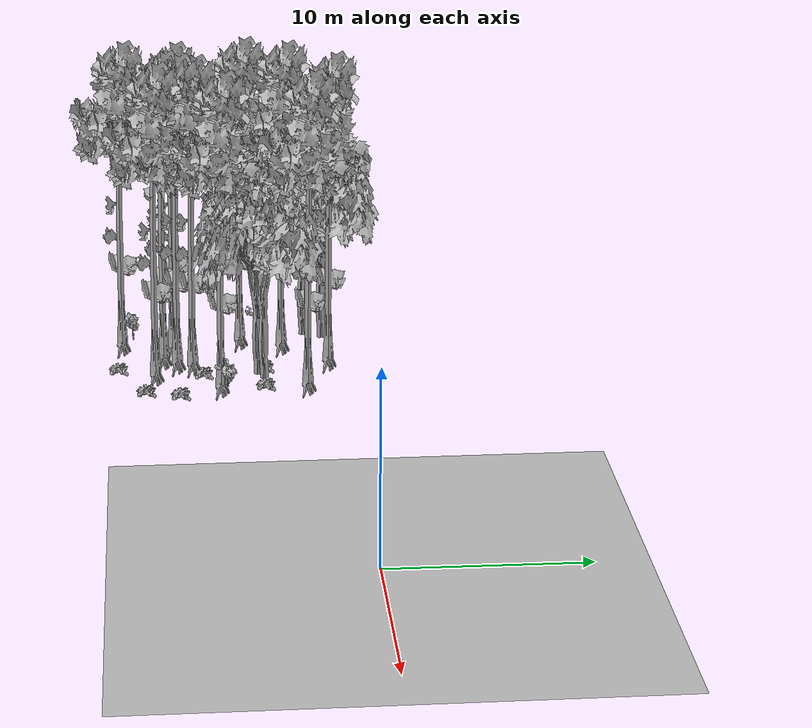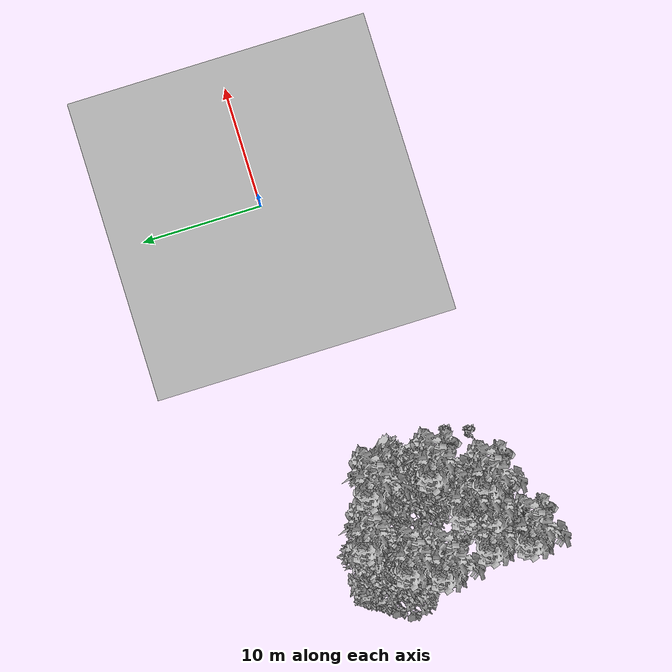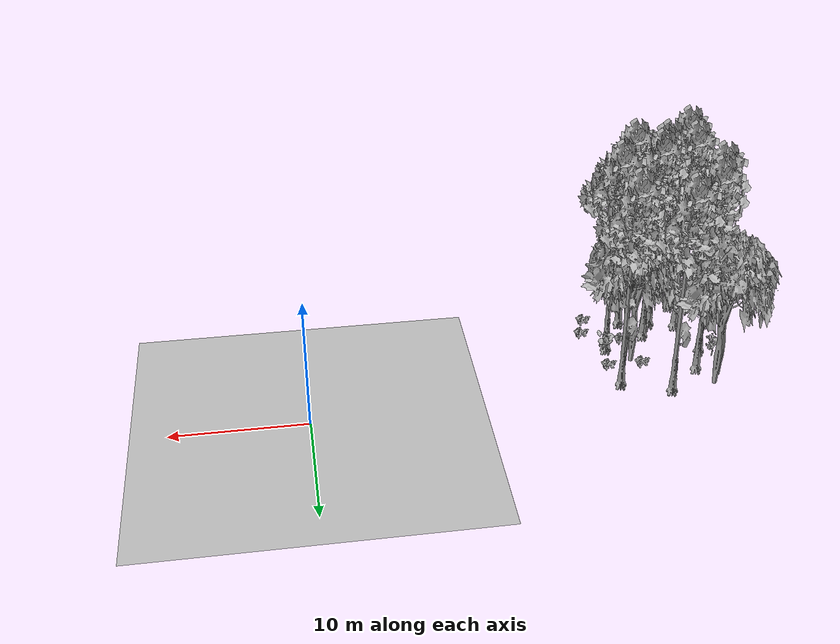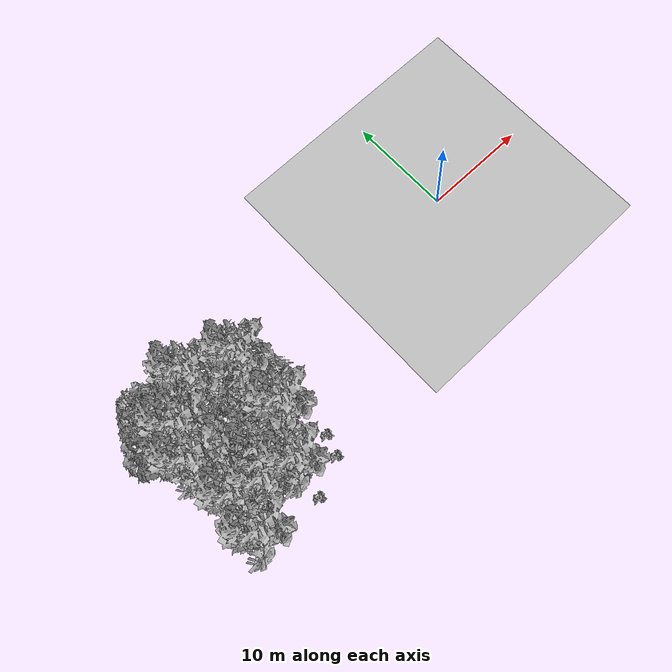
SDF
<sdf version="1.7">
 <world name="default">
  <model name="ground_plane">
   <static>1</static>
   <link name="link">
    <collision name="collision">
     <pose>-50 0 0 0 -0 0</pose>
     <geometry><plane><normal>0 0 1</normal><size>80 80</size></plane></geometry>
     <surface><contact><ode><min_depth>0.01</min_depth><max_vel>0</max_vel></ode></contact></surface>
    </collision>
    <visual name="grass">
     <cast_shadows>0</cast_shadows>
     <geometry>
      <mesh>
       <scale>0.46714285714285714 0.46714285714285714 0.1</scale>
       <uri>file://grass_plane/meshes/grass_plane.dae</uri>
      </mesh>
     </geometry>
    </visual>
   </link>
  </model>
  <model name="Tree 140">
   <static>1</static>
   <pose>-24.074778567931837 -4.224179848052529 0 1.57079 -0 0</pose>
   <link name="link">
    <collision name="collision">
     <geometry><mesh><scale>3.5 5 3.5</scale><uri>model://tree_2/meshes/tree_2.obj</uri></mesh></geometry>
    </collision>
    <visual name="visual">
     <geometry><mesh><scale>3.5 5 3.5</scale><uri>model://tree_2/meshes/tree_2.obj</uri></mesh></geometry>
    </visual>
   </link>
  </model>
  <model name="Tree 196">
   <static>1</static>
   <pose>-23.22025420814134 -6.5997689031866145 0 1.57079 -0 0</pose>
   <link name="link">
    <collision name="collision">
     <geometry><mesh><scale>3.5 5 3.5</scale><uri>model://tree_9/meshes/tree_9.obj</uri></mesh></geometry>
    </collision>
    <visual name="visual">
     <geometry><mesh><scale>3.5 5 3.5</scale><uri>model://tree_9/meshes/tree_9.obj</uri></mesh></geometry>
    </visual>
   </link>
  </model>
  <model name="Tree 198">
   <static>1</static>
   <pose>-29.34100350981269 -2.999693591344858 0 1.57079 -0 0</pose>
   <link name="link">
    <collision name="collision">
     <geometry><mesh><scale>3.5 5 3.5</scale><uri>model://tree_9/meshes/tree_9.obj</uri></mesh></geometry>
    </collision>
    <visual name="visual">
     <geometry><mesh><scale>3.5 5 3.5</scale><uri>model://tree_9/meshes/tree_9.obj</uri></mesh></geometry>
    </visual>
   </link>
  </model>
  <model name="Tree 236">
   <static>1</static>
   <pose>-26.876854646677682 -8.933180586159672 0 1.57079 -0 0</pose>
   <link name="link">
    <collision name="collision">
     <geometry><mesh><scale>3.5 5 3.5</scale><uri>model://tree_9/meshes/tree_9.obj</uri></mesh></geometry>
    </collision>
    <visual name="visual">
     <geometry><mesh><scale>3.5 5 3.5</scale><uri>model://tree_9/meshes/tree_9.obj</uri></mesh></geometry>
    </visual>
   </link>
  </model>
  <model name="Tree 317">
   <static>1</static>
   <pose>-29.89655371857726 -12.00275951224615 0 1.57079 -0 0</pose>
   <link name="link">
    <collision name="collision">
     <geometry><mesh><scale>3.5 5 3.5</scale><uri>model://tree_9/meshes/tree_9.obj</uri></mesh></geometry>
    </collision>
    <visual name="visual">
     <geometry><mesh><scale>3.5 5 3.5</scale><uri>model://tree_9/meshes/tree_9.obj</uri></mesh></geometry>
    </visual>
   </link>
  </model>
  <model name="Tree 354">
   <static>1</static>
   <pose>-30.08044130854668 -0.6957026290686841 0 1.57079 -0 0</pose>
   <link name="link">
    <collision name="collision">
     <geometry><mesh><scale>3.5 5 3.5</scale><uri>model://tree_2/meshes/tree_2.obj</uri></mesh></geometry>
    </collision>
    <visual name="visual">
     <geometry><mesh><scale>3.5 5 3.5</scale><uri>model://tree_2/meshes/tree_2.obj</uri></mesh></geometry>
    </visual>
   </link>
  </model>
  <model name="Tree 383">
   <static>1</static>
   <pose>-29.51314923952853 -9.132823719960797 0 1.57079 -0 0</pose>
   <link name="link">
    <collision name="collision">
     <geometry><mesh><scale>3.5 5 3.5</scale><uri>model://tree_9/meshes/tree_9.obj</uri></mesh></geometry>
    </collision>
    <visual name="visual">
     <geometry><mesh><scale>3.5 5 3.5</scale><uri>model://tree_9/meshes/tree_9.obj</uri></mesh></geometry>
    </visual>
   </link>
  </model>
  <model name="Tree 403">
   <static>1</static>
   <pose>-25.18936117669407 -10.149986230448818 0 1.57079 -0 0</pose>
   <link name="link">
    <collision name="collision">
     <geometry><mesh><scale>3.5 5 3.5</scale><uri>model://tree_9/meshes/tree_9.obj</uri></mesh></geometry>
    </collision>
    <visual name="visual">
     <geometry><mesh><scale>3.5 5 3.5</scale><uri>model://tree_9/meshes/tree_9.obj</uri></mesh></geometry>
    </visual>
   </link>
  </model>
  <model name="Tree 421">
   <static>1</static>
   <pose>-24.72395292384666 -4.53409005766094 0 1.57079 -0 0</pose>
   <link name="link">
    <collision name="collision">
     <geometry><mesh><scale>3.5 5 3.5</scale><uri>model://tree_2/meshes/tree_2.obj</uri></mesh></geometry>
    </collision>
    <visual name="visual">
     <geometry><mesh><scale>3.5 5 3.5</scale><uri>model://tree_2/meshes/tree_2.obj</uri></mesh></geometry>
    </visual>
   </link>
  </model>
  <model name="Tree 429">
   <static>1</static>
   <pose>-27.56545328149724 -9.685262740457937 0 1.57079 -0 0</pose>
   <link name="link">
    <collision name="collision">
     <geometry><mesh><scale>3.5 5 3.5</scale><uri>model://tree_9/meshes/tree_9.obj</uri></mesh></geometry>
    </collision>
    <visual name="visual">
     <geometry><mesh><scale>3.5 5 3.5</scale><uri>model://tree_9/meshes/tree_9.obj</uri></mesh></geometry>
    </visual>
   </link>
  </model>
  <model name="Tree 470">
   <static>1</static>
   <pose>-30.64999932081941 -1.7196036578301914 0 1.57079 -0 0</pose>
   <link name="link">
    <collision name="collision">
     <geometry><mesh><scale>3.5 5 3.5</scale><uri>model://tree_2/meshes/tree_2.obj</uri></mesh></geometry>
    </collision>
    <visual name="visual">
     <geometry><mesh><scale>3.5 5 3.5</scale><uri>model://tree_2/meshes/tree_2.obj</uri></mesh></geometry>
    </visual>
   </link>
  </model>
  <model name="Tree 564">
   <static>1</static>
   <pose>-30.317760513174616 -5.3227821002134945 0 1.57079 -0 0</pose>
   <link name="link">
    <collision name="collision">
     <geometry><mesh><scale>3.5 5 3.5</scale><uri>model://tree_9/meshes/tree_9.obj</uri></mesh></geometry>
    </collision>
    <visual name="visual">
     <geometry><mesh><scale>3.5 5 3.5</scale><uri>model://tree_9/meshes/tree_9.obj</uri></mesh></geometry>
    </visual>
   </link>
  </model>
  <model name="Tree 614">
   <static>1</static>
   <pose>-26.5884598002941 -8.08014147848506 0 1.57079 -0 0</pose>
   <link name="link">
    <collision name="collision">
     <geometry><mesh><scale>3.5 5 3.5</scale><uri>model://tree_9/meshes/tree_9.obj</uri></mesh></geometry>
    </collision>
    <visual name="visual">
     <geometry><mesh><scale>3.5 5 3.5</scale><uri>model://tree_9/meshes/tree_9.obj</uri></mesh></geometry>
    </visual>
   </link>
  </model>
  <model name="Tree 632">
   <static>1</static>
   <pose>-26.707693243315894 -0.5054184590076076 0 1.57079 -0 0</pose>
   <link name="link">
    <collision name="collision">
     <geometry><mesh><scale>3.5 5 3.5</scale><uri>model://tree_9/meshes/tree_9.obj</uri></mesh></geometry>
    </collision>
    <visual name="visual">
     <geometry><mesh><scale>3.5 5 3.5</scale><uri>model://tree_9/meshes/tree_9.obj</uri></mesh></geometry>
    </visual>
   </link>
  </model>
  <model name="Tree 635">
   <static>1</static>
   <pose>-23.165510806404647 -1.8602541495269875 0 1.57079 -0 0</pose>
   <link name="link">
    <collision name="collision">
     <geometry><mesh><scale>3.5 5 3.5</scale><uri>model://tree_9/meshes/tree_9.obj</uri></mesh></geometry>
    </collision>
    <visual name="visual">
     <geometry><mesh><scale>3.5 5 3.5</scale><uri>model://tree_9/meshes/tree_9.obj</uri></mesh></geometry>
    </visual>
   </link>
  </model>
  <model name="Bush 70">
   <static>1</static>
   <pose>-30.365210611213097 -11.388227127947658 0 1.57079 -0 0</pose>
   <link name="link">
    <collision name="collision">
     <geometry><mesh><scale>2 2 2</scale><uri>model://bush_5/meshes/bush_5.obj</uri></mesh></geometry>
     <surface><contact><collide_without_contact>false</collide_without_contact></contact></surface>
    </collision>
    <visual name="visual">
     <geometry><mesh><scale>2 2 2</scale><uri>model://bush_5/meshes/bush_5.obj</uri></mesh></geometry>
    </visual>
   </link>
  </model>
  <model name="Bush 141">
   <static>1</static>
   <pose>-21.797375855105916 -8.82443574121534 0 1.57079 -0 0</pose>
   <link name="link">
    <collision name="collision">
     <geometry><mesh><scale>2 2 2</scale><uri>model://bush_2/meshes/bush_2.obj</uri></mesh></geometry>
     <surface><contact><collide_without_contact>false</collide_without_contact></contact></surface>
    </collision>
    <visual name="visual">
     <geometry><mesh><scale>2 2 2</scale><uri>model://bush_2/meshes/bush_2.obj</uri></mesh></geometry>
    </visual>
   </link>
  </model>
  <model name="Bush 171">
   <static>1</static>
   <pose>-24.701776467887292 -7.5174883593307555 0 1.57079 -0 0</pose>
   <link name="link">
    <collision name="collision">
     <geometry><mesh><scale>2 2 2</scale><uri>model://bush_2/meshes/bush_2.obj</uri></mesh></geometry>
     <surface><contact><collide_without_contact>false</collide_without_contact></contact></surface>
    </collision>
    <visual name="visual">
     <geometry><mesh><scale>2 2 2</scale><uri>model://bush_2/meshes/bush_2.obj</uri></mesh></geometry>
    </visual>
   </link>
  </model>
  <model name="Bush 206">
   <static>1</static>
   <pose>-22.90771953564603 -6.223824906668838 0 1.57079 -0 0</pose>
   <link name="link">
    <collision name="collision">
     <geometry><mesh><scale>2 2 2</scale><uri>model://bush_0/meshes/bush_0.obj</uri></mesh></geometry>
     <surface><contact><collide_without_contact>false</collide_without_contact></contact></surface>
    </collision>
    <visual name="visual">
     <geometry><mesh><scale>2 2 2</scale><uri>model://bush_0/meshes/bush_0.obj</uri></mesh></geometry>
    </visual>
   </link>
  </model>
  <model name="Bush 405">
   <static>1</static>
   <pose>-22.825718282927994 -4.177903190632108 0 1.57079 -0 0</pose>
   <link name="link">
    <collision name="collision">
     <geometry><mesh><scale>2 2 2</scale><uri>model://bush_2/meshes/bush_2.obj</uri></mesh></geometry>
     <surface><contact><collide_without_contact>false</collide_without_contact></contact></surface>
    </collision>
    <visual name="visual">
     <geometry><mesh><scale>2 2 2</scale><uri>model://bush_2/meshes/bush_2.obj</uri></mesh></geometry>
    </visual>
   </link>
  </model>
  <model name="Bush 473">
   <static>1</static>
   <pose>-30.938110294900454 -4.154376277987822 0 1.57079 -0 0</pose>
   <link name="link">
    <collision name="collision">
     <geometry><mesh><scale>2 2 2</scale><uri>model://bush_5/meshes/bush_5.obj</uri></mesh></geometry>
     <surface><contact><collide_without_contact>false</collide_without_contact></contact></surface>
    </collision>
    <visual name="visual">
     <geometry><mesh><scale>2 2 2</scale><uri>model://bush_5/meshes/bush_5.obj</uri></mesh></geometry>
    </visual>
   </link>
  </model>
  <model name="Bush 485">
   <static>1</static>
   <pose>-25.66374585045108 -12.194671491301044 0 1.57079 -0 0</pose>
   <link name="link">
    <collision name="collision">
     <geometry><mesh><scale>2 2 2</scale><uri>model://bush_2/meshes/bush_2.obj</uri></mesh></geometry>
     <surface><contact><collide_without_contact>false</collide_without_contact></contact></surface>
    </collision>
    <visual name="visual">
     <geometry><mesh><scale>2 2 2</scale><uri>model://bush_2/meshes/bush_2.obj</uri></mesh></geometry>
    </visual>
   </link>
  </model>
  <model name="Bush 571">
   <static>1</static>
   <pose>-22.38800429276351 -10.68216685954038 0 1.57079 -0 0</pose>
   <link name="link">
    <collision name="collision">
     <geometry><mesh><scale>2 2 2</scale><uri>model://bush_2/meshes/bush_2.obj</uri></mesh></geometry>
     <surface><contact><collide_without_contact>false</collide_without_contact></contact></surface>
    </collision>
    <visual name="visual">
     <geometry><mesh><scale>2 2 2</scale><uri>model://bush_2/meshes/bush_2.obj</uri></mesh></geometry>
    </visual>
   </link>
  </model>
  <model name="Bush 616">
   <static>1</static>
   <pose>-25.440349375541302 -4.136373862403204 0 1.57079 -0 0</pose>
   <link name="link">
    <collision name="collision">
     <geometry><mesh><scale>2 2 2</scale><uri>model://bush_2/meshes/bush_2.obj</uri></mesh></geometry>
     <surface><contact><collide_without_contact>false</collide_without_contact></contact></surface>
    </collision>
    <visual name="visual">
     <geometry><mesh><scale>2 2 2</scale><uri>model://bush_2/meshes/bush_2.obj</uri></mesh></geometry>
    </visual>
   </link>
  </model>
 </world>
</sdf>
